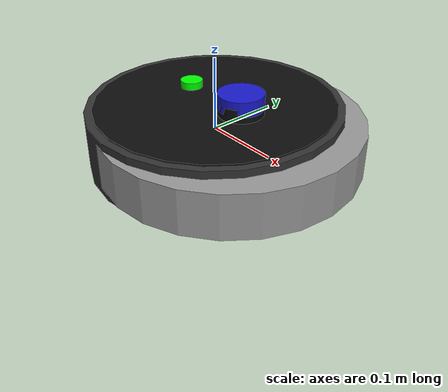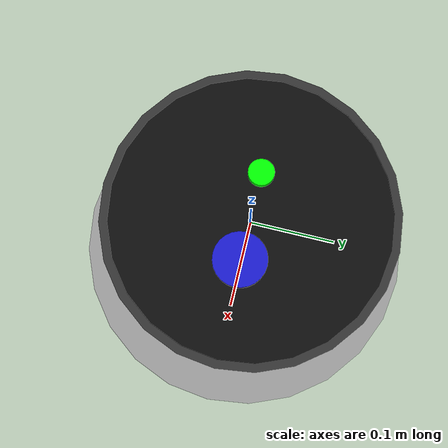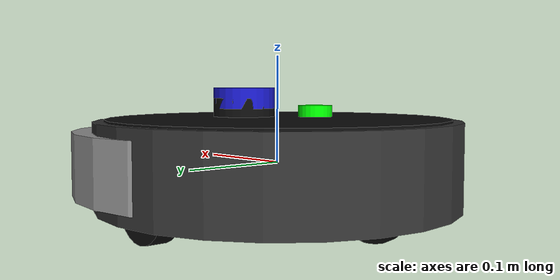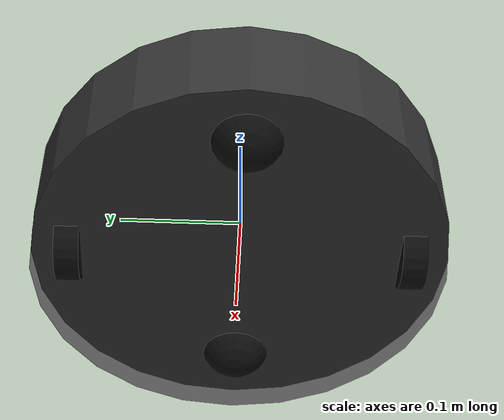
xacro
<?xml version="1.0"?>
<robot name="roomba_bot" xmlns:xacro="http://ros.org/wiki/xacro">

  <!-- MATERIALS -->
  <material name="dark_grey"><color rgba="0.2 0.2 0.2 1"/></material>
  <material name="light_grey"><color rgba="0.6 0.6 0.6 1"/></material>
  <material name="black"><color rgba="0.05 0.05 0.05 1"/></material>
  <material name="blue"><color rgba="0.1 0.1 0.8 1"/></material>
  <material name="green_light"><color rgba="0 1 0 1"/></material>

  <!-- ROBOT BASE -->
  <link name="base_link">

    <!-- 1. Main Chassis (The Puck) -->
    <visual>
      <geometry><cylinder length="0.08" radius="0.17"/></geometry>
      <material name="dark_grey"/>
    </visual>
    <collision name="base_collision">
      <geometry><cylinder length="0.08" radius="0.175"/></geometry>
    </collision>

    <!-- 2. Bumper -->
    <visual>
      <origin xyz="0.03 0 0" rpy="0 0 0"/>
      <geometry>
        <cylinder length="0.06" radius="0.175"/>
      </geometry>
      <material name="light_grey"/>
    </visual>

    <!-- 3. Top Decorative Plate -->
    <visual>
      <origin xyz="0 0 0.041" rpy="0 0 0"/>
      <geometry><cylinder length="0.002" radius="0.16"/></geometry>
      <material name="black"/>
    </visual>

    <!-- 4. Power Button -->
    <visual>
      <origin xyz="-0.05 0 0.05" rpy="0 0 0"/>
      <geometry><cylinder length="0.01" radius="0.015"/></geometry>
      <material name="green_light"/>
    </visual>

    <inertial>
      <mass value="4.0"/>
      <origin xyz="0 0 -0.02" rpy="0 0 0"/>
      <inertia ixx="0.03" ixy="0" ixz="0" iyy="0.03" iyz="0" izz="0.06"/>
    </inertial>
  </link>

  <!-- WHEELS -->
  <!-- Left Wheel -->
  <link name="left_wheel">
    <visual>
      <geometry><cylinder length="0.02" radius="0.033"/></geometry>
      <material name="black"/>
    </visual>
    <collision>
      <geometry><cylinder length="0.02" radius="0.033"/></geometry>
      <surface>
        <friction>
          <ode>
            <mu>1.0</mu>   <!-- High forward friction -->
            <mu2>0.2</mu2>  <!-- Low sideways friction -->
          </ode>
        </friction>
      </surface>
    </collision>
    <inertial>
      <mass value="0.2"/>
      <inertia ixx="0.001" ixy="0" ixz="0" iyy="0.001" iyz="0" izz="0.001"/>
    </inertial>
  </link>

  <joint name="left_wheel_joint" type="continuous">
    <parent link="base_link"/>
    <child link="left_wheel"/>
    <origin xyz="0 0.14 -0.025" rpy="-1.57 0 0"/>
    <axis xyz="0 0 1"/>
    <dynamics damping="0.5" friction="1.0"/>
  </joint>

  <!-- Right Wheel -->
  <link name="right_wheel">
    <visual>
      <geometry><cylinder length="0.02" radius="0.033"/></geometry>
      <material name="black"/>
    </visual>
    <collision>
      <geometry><cylinder length="0.02" radius="0.033"/></geometry>
      <surface>
        <friction>
          <ode>
            <mu>1.0</mu>
            <mu2>0.2</mu2>
          </ode>
        </friction>
      </surface>
    </collision>
    <inertial>
      <mass value="0.2"/>
      <inertia ixx="0.001" ixy="0" ixz="0" iyy="0.001" iyz="0" izz="0.001"/>
    </inertial>
  </link>

  <joint name="right_wheel_joint" type="continuous">
    <parent link="base_link"/>
    <child link="right_wheel"/>
    <origin xyz="0 -0.14 -0.025" rpy="-1.57 0 0"/>
    <axis xyz="0 0 1"/>
    <dynamics damping="0.5" friction="1.0"/>
  </joint>

  <!-- Front Caster Wheel -->
  <link name="caster">
    <visual>
      <geometry><sphere radius="0.032"/></geometry>
      <material name="black"/>
    </visual>
    <collision>
      <geometry><sphere radius="0.032"/></geometry>
      <surface>
        <friction>
          <ode>
            <mu>0.0</mu>
            <mu2>0.0</mu2>
          </ode>
        </friction>
        <contact>
          <ode>
            <kp>1000000.0</kp>
            <kd>1.0</kd>
          </ode>
        </contact>
      </surface>
    </collision>
    <inertial>
      <mass value="0.1"/>
      <inertia ixx="0.001" ixy="0" ixz="0" iyy="0.001" iyz="0" izz="0.001"/>
    </inertial>
  </link>

  <joint name="caster_joint" type="fixed">
    <parent link="base_link"/>
    <child link="caster"/>
    <origin xyz="0.12 0 -0.025"/>
  </joint>

  <!-- Back Caster Wheel -->
  <link name="caster_back">
    <visual>
      <geometry><sphere radius="0.032"/></geometry>
      <material name="black"/>
    </visual>
    <collision>
      <geometry><sphere radius="0.032"/></geometry>
      <surface>
        <friction><ode><mu>0.0</mu><mu2>0.0</mu2></ode></friction>
        <contact><ode><kp>1000000.0</kp><kd>1.0</kd></ode></contact>
      </surface>
    </collision>
    <inertial>
      <mass value="0.1"/>
      <inertia ixx="0.001" ixy="0" ixz="0" iyy="0.001" iyz="0" izz="0.001"/>
    </inertial>
  </link>

  <joint name="caster_back_joint" type="fixed">
    <parent link="base_link"/>
    <child link="caster_back"/>
    <origin xyz="-0.12 0 -0.025"/>
  </joint>

  <!-- LIDAR -->
  <link name="base_link/lidar">
    <visual>
      <origin xyz="0 0 -0.01"/>
      <geometry><cylinder length="0.02" radius="0.03"/></geometry>
      <material name="black"/>
    </visual>
    <visual>
      <geometry><cylinder length="0.02" radius="0.03"/></geometry>
      <material name="blue"/>
    </visual>
  </link>

  <joint name="lidar_joint" type="fixed">
    <parent link="base_link"/>
    <child link="base_link/lidar"/>
    <origin xyz="0.05 0 0.06"/>
  </joint>

  <!-- PLUGINS -->
  <gazebo>
    <plugin filename="libignition-gazebo-diff-drive-system.so" name="ignition::gazebo::systems::DiffDrive">
      <!-- Wheel Info -->
      <left_joint>left_wheel_joint</left_joint>
      <right_joint>right_wheel_joint</right_joint>
      <wheel_separation>0.28</wheel_separation>
      <wheel_radius>0.033</wheel_radius>

      <!-- Topics -->
      <topic>/cmd_vel</topic>
      <odom_topic>/odom</odom_topic>

      <!-- Frames -->
      <frame_id>roomba/odom</frame_id>
      <child_frame_id>roomba/base_link</child_frame_id>

      <!-- LET GAZEBO PUBLISH TF -->
      <publish_odom_tf>true</publish_odom_tf>

      <!-- Odometry Publishing Settings -->
      <odom_publish_frequency>50</odom_publish_frequency>
    </plugin>
  </gazebo>

  <gazebo reference="base_link/lidar">
    <sensor name="lidar" type="gpu_lidar">
      <frame>base_link/lidar</frame>
      <pose>0 0 0 0 0 0</pose>
      <topic>/scan</topic>
      <update_rate>10</update_rate>
      <ray>
        <scan>
          <horizontal>
            <samples>360</samples>
            <resolution>1</resolution>
            <min_angle>-3.14</min_angle>
            <max_angle>3.14</max_angle>
          </horizontal>
        </scan>
        <range>
          <min>0.15</min>
          <max>10.0</max>
        </range>
      </ray>
      <always_on>1</always_on>
      <visualize>true</visualize>
    </sensor>
  </gazebo>

  <gazebo reference="base_link">
    <sensor name="bumper_sensor" type="contact">
      <always_on>true</always_on>
      <update_rate>50.0</update_rate>
      <contact>
        <collision>base_link_fixed_joint_lump__base_collision_collision</collision>
      </contact>
      <topic>bumper</topic>
    </sensor>
  </gazebo>

</robot>
